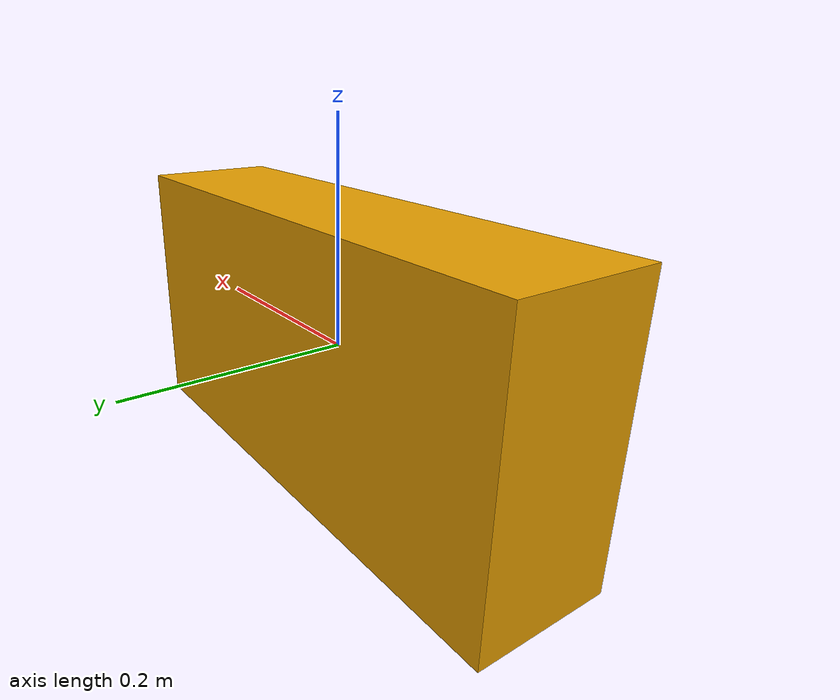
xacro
<?xml version="1.0" ?>

<robot name="simple_cube2" xmlns:xacro="http://ros.org/wiki/xacro">

    <!-- Macro to create a simple cube with an image texture -->
    <xacro:macro name="simple_cube2" >

        <!-- Gazebo Plugins -->
        <xacro:include filename="$(find example_models)/urdf/simple_cube2/simple_cube2.gazebo.xacro"/>

        <!-- Links -->
        <link name="simple_cube2_link">
            <visual>
                <origin xyz="0 0 0" rpy="0 0 0" />
                <geometry>
                    <box size="0.5 0.125 0.25" />
                </geometry>
            </visual>
            <collision>
                <origin xyz="0 0 0" rpy="0 0 0" />
                <geometry>
                    <box size="0.5 0.125 0.25" />
                </geometry>
            </collision>

            <inertial>
                <mass value="0.01" />
                <inertia ixx="${1/12*0.01*(2*0.25**2)}"
                         ixy="0"
                         ixz="0"
                         iyy="${1/12*0.01*(2*0.25**2)}"
                         iyz="0"
                         izz="${1/12*0.01*(2*0.25**2)}" />
            </inertial>
        </link>

    </xacro:macro> <!-- end of the xacro macro -->

    <!-- execute the macro (spawn the cube) -->
    <xacro:simple_cube2 />
</robot>
